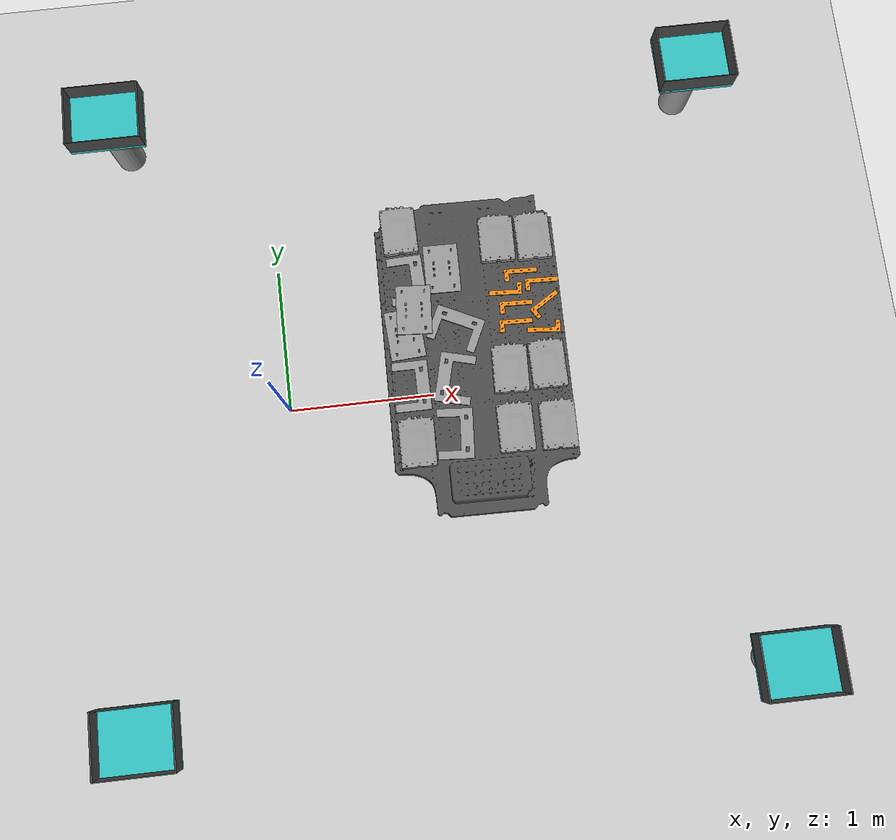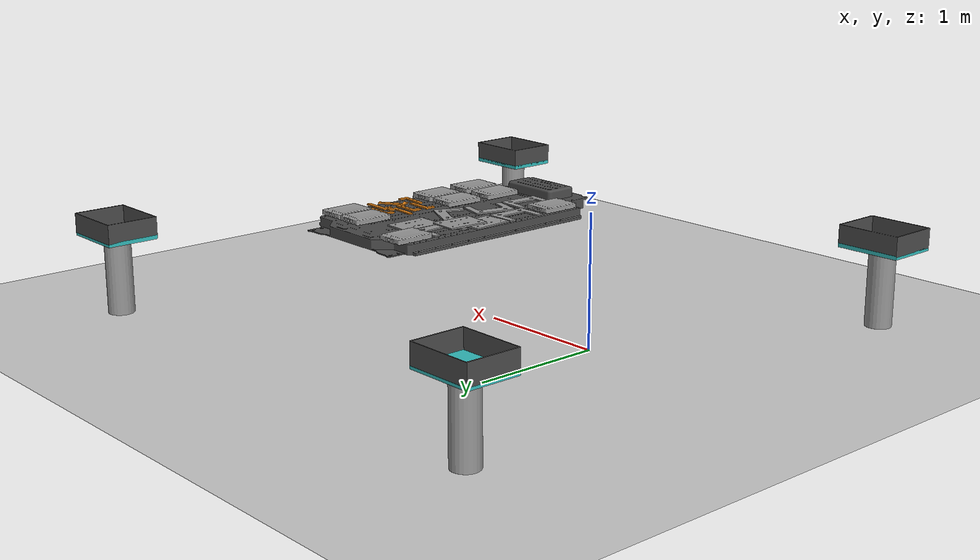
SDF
<sdf version="1.6">
 <world name="default">
  <scene><shadows>0</shadows><ambient>0.4 0.4 0.4 1</ambient><background>0.7 0.7 0.7 1</background></scene>
  <model name="ground_plane">
   <static>1</static>
   <link name="link">
    <collision name="collision">
     <geometry><plane><normal>0 0 1</normal><size>100 100</size></plane></geometry>
     <surface><friction><ode><mu>100</mu><mu2>50</mu2></ode></friction></surface>
    </collision>
    <visual name="visual">
     <cast_shadows>0</cast_shadows>
     <geometry><plane><normal>0 0 1</normal><size>100 100</size></plane></geometry>
     <material>
      <script><uri>file://media/materials/scripts/gazebo.material</uri><name>PR2/Grey3</name></script>
     </material>
    </visual>
   </link>
  </model>
  <light name="sun" type="directional">
   <pose>0 0 10 0 -0 0</pose>
   <diffuse>0.8 0.8 0.8 1</diffuse>
   <specular>0.2 0.2 0.2 1</specular>
   <attenuation>
    <range>1000</range>
    <constant>0.9</constant>
    <linear>0.01</linear>
    <quadratic>0.001</quadratic>
   </attenuation>
   <direction>-0.5 0.1 -0.9</direction>
  </light>
  <model name="tesla_battery">
   <static>1</static>
   <link name="link0">
    <collision name="collision">
     <pose>0 0.15 -0.05445 0 -0 0</pose>
     <geometry><box><size>1 1.9 0.12</size></box></geometry>
     <surface><friction><ode><mu>1</mu><mu2>1</mu2></ode></friction></surface>
    </collision>
    <visual name="visual">
     <geometry><mesh><uri>model://tesla_battery_v2/meshes/tesla_batteryv2.dae</uri></mesh></geometry>
     <material>
      <script><uri>file://media/materials/scripts/gazebo.material</uri><name>Gazebo/DarkGrey</name></script>
     </material>
    </visual>
   </link>
   <pose>1.28832 0.000278 0.8 0 -0 0</pose>
  </model>
  <model name="tesla_battery_support">
   <static>1</static>
   <link name="link0">
    <collision name="collision"><geometry><box><size>0.7 2.8 0.5</size></box></geometry></collision>
   </link>
   <pose>1.3 0 0.25 0 -0 0</pose>
  </model>
  <model name="bin_1">
   <static>1</static>
   <link name="column_link">
    <collision name="column">
     <pose>0 0 0.3 0 -0 0</pose>
     <geometry><box><size>0.4 0.5 0.6</size></box></geometry>
     <surface><friction><ode><mu>0.6</mu><mu2>0.6</mu2></ode></friction></surface>
    </collision>
    <visual name="column">
     <pose>0 0 0.3 0 -0 0</pose>
     <geometry><cylinder><radius>0.1</radius><length>0.6</length></cylinder></geometry>
     <material>
      <script><uri>file://media/materials/scripts/gazebo.material</uri><name>PR2/Grey4</name></script>
     </material>
    </visual>
   </link>
   <joint name="column2table" type="revolute">
    <parent>column_link</parent>
    <child>table_link</child>
    <pose>0 0 0.3 0 -0 0</pose>
   </joint>
   <link name="table_link">
    <collision name="surface">
     <pose>0 0 0.6 0 -0 0</pose>
     <geometry><box><size>0.5 0.4 0.03</size></box></geometry>
     <surface><friction><ode><mu>0.6</mu><mu2>0.6</mu2></ode></friction></surface>
    </collision>
    <visual name="surface">
     <pose>0 0 0.6 0 -0 0</pose>
     <geometry><box><size>0.5 0.4 0.03</size></box></geometry>
     <material>
      <script><uri>file://media/materials/scripts/gazebo.material</uri><name>Gazebo/Turquoise</name></script>
     </material>
    </visual>
   </link>
   <joint name="table2bin" type="prismatic">
    <parent>table_link</parent>
    <child>bin_link</child>
    <pose>0 0 1 0 -0 0</pose>
    <axis>
     <xyz>0 0 1</xyz>
     <use_parent_model_frame>0</use_parent_model_frame>
     <limit><lower>-1e+16</lower><upper>1e+16</upper></limit>
     <dynamics><spring_reference>0</spring_reference><spring_stiffness>0</spring_stiffness></dynamics>
    </axis>
   </joint>
   <link name="bin_link">
    <collision name="bin">
     <pose>0 0 0.68 0 -0 0</pose>
     <geometry><mesh><uri>model://table_bin/meshes/big_bin.stl</uri></mesh></geometry>
    </collision>
    <visual name="bin">
     <pose>0 0 0.68 0 -0 0</pose>
     <geometry><mesh><uri>model://table_bin/meshes/big_bin.dae</uri></mesh></geometry>
     <material>
      <script><uri>file://media/materials/scripts/gazebo.material</uri><name>Gazebo/DarkGrey</name></script>
     </material>
    </visual>
   </link>
   <pose>-1 2 0 0 -0 0</pose>
  </model>
  <model name="bin_2">
   <static>1</static>
   <link name="column_link">
    <collision name="column">
     <pose>0 0 0.3 0 -0 0</pose>
     <geometry><box><size>0.4 0.5 0.6</size></box></geometry>
     <surface><friction><ode><mu>0.6</mu><mu2>0.6</mu2></ode></friction></surface>
    </collision>
    <visual name="column">
     <pose>0 0 0.3 0 -0 0</pose>
     <geometry><cylinder><radius>0.1</radius><length>0.6</length></cylinder></geometry>
     <material>
      <script><uri>file://media/materials/scripts/gazebo.material</uri><name>PR2/Grey4</name></script>
     </material>
    </visual>
   </link>
   <joint name="column2table" type="revolute">
    <parent>column_link</parent>
    <child>table_link</child>
    <pose>0 0 0.3 0 -0 0</pose>
   </joint>
   <link name="table_link">
    <collision name="surface">
     <pose>0 0 0.6 0 -0 0</pose>
     <geometry><box><size>0.5 0.4 0.03</size></box></geometry>
     <surface><friction><ode><mu>0.6</mu><mu2>0.6</mu2></ode></friction></surface>
    </collision>
    <visual name="surface">
     <pose>0 0 0.6 0 -0 0</pose>
     <geometry><box><size>0.5 0.4 0.03</size></box></geometry>
     <material>
      <script><uri>file://media/materials/scripts/gazebo.material</uri><name>Gazebo/Turquoise</name></script>
     </material>
    </visual>
   </link>
   <joint name="table2bin" type="prismatic">
    <parent>table_link</parent>
    <child>bin_link</child>
    <pose>0 0 1 0 -0 0</pose>
    <axis>
     <xyz>0 0 1</xyz>
     <use_parent_model_frame>0</use_parent_model_frame>
     <limit><lower>-1e+16</lower><upper>1e+16</upper></limit>
     <dynamics><spring_reference>0</spring_reference><spring_stiffness>0</spring_stiffness></dynamics>
    </axis>
   </joint>
   <link name="bin_link">
    <collision name="bin">
     <pose>0 0 0.68 0 -0 0</pose>
     <geometry><mesh><uri>model://table_bin/meshes/big_bin.stl</uri></mesh></geometry>
    </collision>
    <visual name="bin">
     <pose>0 0 0.68 0 -0 0</pose>
     <geometry><mesh><uri>model://table_bin/meshes/big_bin.dae</uri></mesh></geometry>
     <material>
      <script><uri>file://media/materials/scripts/gazebo.material</uri><name>Gazebo/DarkGrey</name></script>
     </material>
    </visual>
   </link>
   <pose>-1 -2 0 0 -0 0</pose>
  </model>
  <model name="bin_3">
   <static>1</static>
   <link name="column_link">
    <collision name="column">
     <pose>0 0 0.3 0 -0 0</pose>
     <geometry><box><size>0.4 0.5 0.6</size></box></geometry>
     <surface><friction><ode><mu>0.6</mu><mu2>0.6</mu2></ode></friction></surface>
    </collision>
    <visual name="column">
     <pose>0 0 0.3 0 -0 0</pose>
     <geometry><cylinder><radius>0.1</radius><length>0.6</length></cylinder></geometry>
     <material>
      <script><uri>file://media/materials/scripts/gazebo.material</uri><name>PR2/Grey4</name></script>
     </material>
    </visual>
   </link>
   <joint name="column2table" type="revolute">
    <parent>column_link</parent>
    <child>table_link</child>
    <pose>0 0 0.3 0 -0 0</pose>
   </joint>
   <link name="table_link">
    <collision name="surface">
     <pose>0 0 0.6 0 -0 0</pose>
     <geometry><box><size>0.5 0.4 0.03</size></box></geometry>
     <surface><friction><ode><mu>0.6</mu><mu2>0.6</mu2></ode></friction></surface>
    </collision>
    <visual name="surface">
     <pose>0 0 0.6 0 -0 0</pose>
     <geometry><box><size>0.5 0.4 0.03</size></box></geometry>
     <material>
      <script><uri>file://media/materials/scripts/gazebo.material</uri><name>Gazebo/Turquoise</name></script>
     </material>
    </visual>
   </link>
   <joint name="table2bin" type="prismatic">
    <parent>table_link</parent>
    <child>bin_link</child>
    <pose>0 0 1 0 -0 0</pose>
    <axis>
     <xyz>0 0 1</xyz>
     <use_parent_model_frame>0</use_parent_model_frame>
     <limit><lower>-1e+16</lower><upper>1e+16</upper></limit>
     <dynamics><spring_reference>0</spring_reference><spring_stiffness>0</spring_stiffness></dynamics>
    </axis>
   </joint>
   <link name="bin_link">
    <collision name="bin">
     <pose>0 0 0.68 0 -0 0</pose>
     <geometry><mesh><uri>model://table_bin/meshes/big_bin.stl</uri></mesh></geometry>
    </collision>
    <visual name="bin">
     <pose>0 0 0.68 0 -0 0</pose>
     <geometry><mesh><uri>model://table_bin/meshes/big_bin.dae</uri></mesh></geometry>
     <material>
      <script><uri>file://media/materials/scripts/gazebo.material</uri><name>Gazebo/DarkGrey</name></script>
     </material>
    </visual>
   </link>
   <pose>3 -2 0 0 -0 0</pose>
  </model>
  <model name="bin_4">
   <static>1</static>
   <link name="column_link">
    <collision name="column">
     <pose>0 0 0.3 0 -0 0</pose>
     <geometry><box><size>0.4 0.5 0.6</size></box></geometry>
     <surface><friction><ode><mu>0.6</mu><mu2>0.6</mu2></ode></friction></surface>
    </collision>
    <visual name="column">
     <pose>0 0 0.3 0 -0 0</pose>
     <geometry><cylinder><radius>0.1</radius><length>0.6</length></cylinder></geometry>
     <material>
      <script><uri>file://media/materials/scripts/gazebo.material</uri><name>PR2/Grey4</name></script>
     </material>
    </visual>
   </link>
   <joint name="column2table" type="revolute">
    <parent>column_link</parent>
    <child>table_link</child>
    <pose>0 0 0.3 0 -0 0</pose>
   </joint>
   <link name="table_link">
    <collision name="surface">
     <pose>0 0 0.6 0 -0 0</pose>
     <geometry><box><size>0.5 0.4 0.03</size></box></geometry>
     <surface><friction><ode><mu>0.6</mu><mu2>0.6</mu2></ode></friction></surface>
    </collision>
    <visual name="surface">
     <pose>0 0 0.6 0 -0 0</pose>
     <geometry><box><size>0.5 0.4 0.03</size></box></geometry>
     <material>
      <script><uri>file://media/materials/scripts/gazebo.material</uri><name>Gazebo/Turquoise</name></script>
     </material>
    </visual>
   </link>
   <joint name="table2bin" type="prismatic">
    <parent>table_link</parent>
    <child>bin_link</child>
    <pose>0 0 1 0 -0 0</pose>
    <axis>
     <xyz>0 0 1</xyz>
     <use_parent_model_frame>0</use_parent_model_frame>
     <limit><lower>-1e+16</lower><upper>1e+16</upper></limit>
     <dynamics><spring_reference>0</spring_reference><spring_stiffness>0</spring_stiffness></dynamics>
    </axis>
   </joint>
   <link name="bin_link">
    <collision name="bin">
     <pose>0 0 0.68 0 -0 0</pose>
     <geometry><mesh><uri>model://table_bin/meshes/big_bin.stl</uri></mesh></geometry>
    </collision>
    <visual name="bin">
     <pose>0 0 0.68 0 -0 0</pose>
     <geometry><mesh><uri>model://table_bin/meshes/big_bin.dae</uri></mesh></geometry>
     <material>
      <script><uri>file://media/materials/scripts/gazebo.material</uri><name>Gazebo/DarkGrey</name></script>
     </material>
    </visual>
   </link>
   <pose>3 2 0 0 -0 0</pose>
  </model>
  <model name="leaf6">
   <static>0</static>
   <link name="leaf_cell_link">
    <collision name="collision">
     <geometry><box><size>0.2228 0.3149 0.035</size></box></geometry>
     <surface><friction><ode><mu>1</mu><mu2>1</mu2></ode></friction></surface>
    </collision>
    <visual name="visual">
     <geometry><mesh><uri>model://leaf_cell/meshes/leaf_cell.dae</uri></mesh></geometry>
     <material>
      <script><uri>file://media/materials/scripts/gazebo.material</uri><name>Gazebo/Grey</name></script>
     </material>
    </visual>
    <inertial>
     <pose>0 0 0 0 0 -1.5707</pose>
     <mass>0.1</mass>
     <inertia>
      <ixx>0.000539835</ixx>
      <iyy>0.00075853</iyy>
      <izz>0.0012813</izz>
      <ixy>0</ixy>
      <ixz>0</ixz>
      <iyz>0</iyz>
     </inertia>
    </inertial>
   </link>
   <pose>1.72511 0.80757 0.823045 3.2e-05 -0 -5.5e-05</pose>
  </model>
  <model name="leaf66">
   <static>0</static>
   <link name="leaf_cell_link">
    <collision name="collision">
     <geometry><box><size>0.2228 0.3149 0.035</size></box></geometry>
     <surface><friction><ode><mu>1</mu><mu2>1</mu2></ode></friction></surface>
    </collision>
    <visual name="visual">
     <geometry><mesh><uri>model://leaf_cell/meshes/leaf_cell.dae</uri></mesh></geometry>
     <material>
      <script><uri>file://media/materials/scripts/gazebo.material</uri><name>Gazebo/Grey</name></script>
     </material>
    </visual>
    <inertial>
     <pose>0 0 0 0 0 -1.5707</pose>
     <mass>0.1</mass>
     <inertia>
      <ixx>0.000539835</ixx>
      <iyy>0.00075853</iyy>
      <izz>0.0012813</izz>
      <ixy>0</ixy>
      <ixz>0</ixz>
      <iyz>0</iyz>
     </inertia>
    </inertial>
   </link>
   <pose>1.49222 0.816703 0.823044 0 5.4e-05 -0.028102</pose>
  </model>
  <model name="leaf5">
   <static>0</static>
   <link name="leaf_cell_link">
    <collision name="collision">
     <geometry><box><size>0.2228 0.3149 0.035</size></box></geometry>
     <surface><friction><ode><mu>1</mu><mu2>1</mu2></ode></friction></surface>
    </collision>
    <visual name="visual">
     <geometry><mesh><uri>model://leaf_cell/meshes/leaf_cell.dae</uri></mesh></geometry>
     <material>
      <script><uri>file://media/materials/scripts/gazebo.material</uri><name>Gazebo/Grey</name></script>
     </material>
    </visual>
    <inertial>
     <pose>0 0 0 0 0 -1.5707</pose>
     <mass>0.1</mass>
     <inertia>
      <ixx>0.000539835</ixx>
      <iyy>0.00075853</iyy>
      <izz>0.0012813</izz>
      <ixy>0</ixy>
      <ixz>0</ixz>
      <iyz>0</iyz>
     </inertia>
    </inertial>
   </link>
   <pose>1.71144 -0.029433 0.823034 0.000103 0 0.004322</pose>
  </model>
  <model name="leaf55">
   <static>0</static>
   <link name="leaf_cell_link">
    <collision name="collision">
     <geometry><box><size>0.2228 0.3149 0.035</size></box></geometry>
     <surface><friction><ode><mu>1</mu><mu2>1</mu2></ode></friction></surface>
    </collision>
    <visual name="visual">
     <geometry><mesh><uri>model://leaf_cell/meshes/leaf_cell.dae</uri></mesh></geometry>
     <material>
      <script><uri>file://media/materials/scripts/gazebo.material</uri><name>Gazebo/Grey</name></script>
     </material>
    </visual>
    <inertial>
     <pose>0 0 0 0 0 -1.5707</pose>
     <mass>0.1</mass>
     <inertia>
      <ixx>0.000539835</ixx>
      <iyy>0.00075853</iyy>
      <izz>0.0012813</izz>
      <ixy>0</ixy>
      <ixz>0</ixz>
      <iyz>0</iyz>
     </inertia>
    </inertial>
   </link>
   <pose>1.47668 -0.032976 0.823044 0 5.4e-05 -0.041658</pose>
  </model>
  <model name="leaf4">
   <static>0</static>
   <link name="leaf_cell_link">
    <collision name="collision">
     <geometry><box><size>0.2228 0.3149 0.035</size></box></geometry>
     <surface><friction><ode><mu>1</mu><mu2>1</mu2></ode></friction></surface>
    </collision>
    <visual name="visual">
     <geometry><mesh><uri>model://leaf_cell/meshes/leaf_cell.dae</uri></mesh></geometry>
     <material>
      <script><uri>file://media/materials/scripts/gazebo.material</uri><name>Gazebo/Grey</name></script>
     </material>
    </visual>
    <inertial>
     <pose>0 0 0 0 0 -1.5707</pose>
     <mass>0.1</mass>
     <inertia>
      <ixx>0.000539835</ixx>
      <iyy>0.00075853</iyy>
      <izz>0.0012813</izz>
      <ixy>0</ixy>
      <ixz>0</ixz>
      <iyz>0</iyz>
     </inertia>
    </inertial>
   </link>
   <pose>1.72599 -0.41415 0.82305 0 -0 -0.02291</pose>
  </model>
  <model name="leaf44">
   <static>0</static>
   <link name="leaf_cell_link">
    <collision name="collision">
     <geometry><box><size>0.2228 0.3149 0.035</size></box></geometry>
     <surface><friction><ode><mu>1</mu><mu2>1</mu2></ode></friction></surface>
    </collision>
    <visual name="visual">
     <geometry><mesh><uri>model://leaf_cell/meshes/leaf_cell.dae</uri></mesh></geometry>
     <material>
      <script><uri>file://media/materials/scripts/gazebo.material</uri><name>Gazebo/Grey</name></script>
     </material>
    </visual>
    <inertial>
     <pose>0 0 0 0 0 -1.5707</pose>
     <mass>0.1</mass>
     <inertia>
      <ixx>0.000539835</ixx>
      <iyy>0.00075853</iyy>
      <izz>0.0012813</izz>
      <ixy>0</ixy>
      <ixz>0</ixz>
      <iyz>0</iyz>
     </inertia>
    </inertial>
   </link>
   <pose>1.46423 -0.403984 0.82305 0 0 -0.014374</pose>
  </model>
  <model name="leaf1">
   <static>0</static>
   <link name="leaf_cell_link">
    <collision name="collision">
     <geometry><box><size>0.2228 0.3149 0.035</size></box></geometry>
     <surface><friction><ode><mu>1</mu><mu2>1</mu2></ode></friction></surface>
    </collision>
    <visual name="visual">
     <geometry><mesh><uri>model://leaf_cell/meshes/leaf_cell.dae</uri></mesh></geometry>
     <material>
      <script><uri>file://media/materials/scripts/gazebo.material</uri><name>Gazebo/Grey</name></script>
     </material>
    </visual>
    <inertial>
     <pose>0 0 0 0 0 -1.5707</pose>
     <mass>0.1</mass>
     <inertia>
      <ixx>0.000539835</ixx>
      <iyy>0.00075853</iyy>
      <izz>0.0012813</izz>
      <ixy>0</ixy>
      <ixz>0</ixz>
      <iyz>0</iyz>
     </inertia>
    </inertial>
   </link>
   <pose>0.878525 0.932489 0.823038 7.8e-05 -0 0.017266</pose>
  </model>
  <model name="plate_a_1">
   <static>0</static>
   <link name="link0">
    <collision name="collision">
     <geometry><mesh><uri>model://plate_a/meshes/plate_a_centroid.stl</uri></mesh></geometry>
     <surface><friction><ode><mu>0.99</mu><mu2>0.99</mu2></ode></friction></surface>
    </collision>
    <visual name="visual">
     <geometry><mesh><uri>model://plate_a/meshes/plate_a_centroid.dae</uri></mesh></geometry>
     <material>
      <script><uri>file://media/materials/scripts/gazebo.material</uri><name>PR2/Grey1</name></script>
     </material>
    </visual>
    <inertial>
     <mass>0.1</mass>
     <inertia>
      <ixx>0.00082718</ixx>
      <ixy>0</ixy>
      <ixz>0</ixz>
      <iyy>0.00043403</iyy>
      <iyz>0</iyz>
      <izz>0.00125955</izz>
     </inertia>
    </inertial>
   </link>
   <pose>0.948662 0.604681 0.81055 0 -0 0.041029</pose>
  </model>
  <model name="leaf2">
   <static>0</static>
   <link name="leaf_cell_link">
    <collision name="collision">
     <geometry><box><size>0.2228 0.3149 0.035</size></box></geometry>
     <surface><friction><ode><mu>1</mu><mu2>1</mu2></ode></friction></surface>
    </collision>
    <visual name="visual">
     <geometry><mesh><uri>model://leaf_cell/meshes/leaf_cell.dae</uri></mesh></geometry>
     <material>
      <script><uri>file://media/materials/scripts/gazebo.material</uri><name>Gazebo/Grey</name></script>
     </material>
    </visual>
    <inertial>
     <pose>0 0 0 0 0 -1.5707</pose>
     <mass>0.1</mass>
     <inertia>
      <ixx>0.000539835</ixx>
      <iyy>0.00075853</iyy>
      <izz>0.0012813</izz>
      <ixy>0</ixy>
      <ixz>0</ixz>
      <iyz>0</iyz>
     </inertia>
    </inertial>
   </link>
   <pose>0.853127 -0.431984 0.823038 -7.8e-05 0 -0.012862</pose>
  </model>
  <model name="plate_b_1">
   <static>0</static>
   <link name="link0">
    <collision name="collision">
     <geometry><box><size>0.2228 0.3149 0.01</size></box></geometry>
     <surface><friction><ode><mu>0.99</mu><mu2>0.99</mu2></ode></friction></surface>
    </collision>
    <visual name="visual">
     <geometry><mesh><uri>model://plate_b/meshes/plate_b.dae</uri></mesh></geometry>
     <material>
      <script><uri>file://media/materials/scripts/gazebo.material</uri><name>Gazebo/Grey</name></script>
     </material>
    </visual>
    <inertial>
     <mass>0.1</mass>
     <inertia>
      <ixx>0.00082718</ixx>
      <ixy>0</ixy>
      <ixz>0</ixz>
      <iyy>0.00043403</iyy>
      <iyz>0</iyz>
      <izz>0.00125955</izz>
     </inertia>
    </inertial>
   </link>
   <pose>0.847003 0.25291 0.81055 0 -0 0.066995</pose>
  </model>
  <model name="plate_a_2">
   <static>0</static>
   <link name="link0">
    <collision name="collision">
     <geometry><mesh><uri>model://plate_a/meshes/plate_a_centroid.stl</uri></mesh></geometry>
     <surface><friction><ode><mu>0.99</mu><mu2>0.99</mu2></ode></friction></surface>
    </collision>
    <visual name="visual">
     <geometry><mesh><uri>model://plate_a/meshes/plate_a_centroid.dae</uri></mesh></geometry>
     <material>
      <script><uri>file://media/materials/scripts/gazebo.material</uri><name>PR2/Grey1</name></script>
     </material>
    </visual>
    <inertial>
     <mass>0.1</mass>
     <inertia>
      <ixx>0.00082718</ixx>
      <ixy>0</ixy>
      <ixz>0</ixz>
      <iyy>0.00043403</iyy>
      <iyz>0</iyz>
      <izz>0.00125955</izz>
     </inertia>
    </inertial>
   </link>
   <pose>0.907387 -0.07956 0.810545 -5.2e-05 -2.6e-05 0.001875</pose>
  </model>
  <gravity>0 0 -9.8</gravity>
  <magnetic_field>6e-06 2.3e-05 -4.2e-05</magnetic_field>
  <atmosphere type="adiabatic"/>
  <physics name="default_physics" default="0" type="ode">
   <max_step_size>0.001</max_step_size>
   <real_time_factor>1</real_time_factor>
   <real_time_update_rate>1000</real_time_update_rate>
  </physics>
  <spherical_coordinates>
   <surface_model>EARTH_WGS84</surface_model>
   <latitude_deg>0</latitude_deg>
   <longitude_deg>0</longitude_deg>
   <elevation>0</elevation>
   <heading_deg>0</heading_deg>
  </spherical_coordinates>
  <model name="plate_a_1_clone">
   <static>0</static>
   <link name="link0">
    <collision name="collision">
     <geometry><mesh><uri>model://plate_a/meshes/plate_a_centroid.stl</uri></mesh></geometry>
     <surface><friction><ode><mu>0.99</mu><mu2>0.99</mu2></ode></friction></surface>
    </collision>
    <visual name="visual">
     <geometry><mesh><uri>model://plate_a/meshes/plate_a_centroid.dae</uri></mesh></geometry>
     <material>
      <script><uri>file://media/materials/scripts/gazebo.material</uri><name>PR2/Grey1</name></script>
     </material>
    </visual>
    <inertial>
     <mass>0.1</mass>
     <inertia>
      <ixx>0.00082718</ixx>
      <ixy>0</ixy>
      <ixz>0</ixz>
      <iyy>0.00043403</iyy>
      <iyz>0</iyz>
      <izz>0.00125955</izz>
     </inertia>
    </inertial>
   </link>
   <pose>1.07779 -0.047328 0.810545 6.2e-05 -6e-06 2.89458</pose>
  </model>
  <model name="plate_a_1_clone_clone">
   <static>0</static>
   <link name="link0">
    <collision name="collision">
     <geometry><mesh><uri>model://plate_a/meshes/plate_a_centroid.stl</uri></mesh></geometry>
     <surface><friction><ode><mu>0.99</mu><mu2>0.99</mu2></ode></friction></surface>
    </collision>
    <visual name="visual">
     <geometry><mesh><uri>model://plate_a/meshes/plate_a_centroid.dae</uri></mesh></geometry>
     <material>
      <script><uri>file://media/materials/scripts/gazebo.material</uri><name>PR2/Grey1</name></script>
     </material>
    </visual>
    <inertial>
     <mass>0.1</mass>
     <inertia>
      <ixx>0.00082718</ixx>
      <ixy>0</ixy>
      <ixz>0</ixz>
      <iyy>0.00043403</iyy>
      <iyz>0</iyz>
      <izz>0.00125955</izz>
     </inertia>
    </inertial>
   </link>
   <pose>1.14471 -0.408374 0.810545 -5e-05 -1.4e-05 -0.068802</pose>
  </model>
  <model name="plate_b_1_clone">
   <static>0</static>
   <link name="link0">
    <collision name="collision">
     <geometry><box><size>0.2228 0.3149 0.01</size></box></geometry>
     <surface><friction><ode><mu>0.99</mu><mu2>0.99</mu2></ode></friction></surface>
    </collision>
    <visual name="visual">
     <geometry><mesh><uri>model://plate_b/meshes/plate_b.dae</uri></mesh></geometry>
     <material>
      <script><uri>file://media/materials/scripts/gazebo.material</uri><name>Gazebo/Grey</name></script>
     </material>
    </visual>
    <inertial>
     <mass>0.1</mass>
     <inertia>
      <ixx>0.00082718</ixx>
      <ixy>0</ixy>
      <ixz>0</ixz>
      <iyy>0.00043403</iyy>
      <iyz>0</iyz>
      <izz>0.00125955</izz>
     </inertia>
    </inertial>
   </link>
   <pose>0.919591 0.403352 0.82055 -6e-06 5e-06 -0.060226</pose>
  </model>
  <model name="plate_b_1_clone_clone">
   <static>0</static>
   <link name="link0">
    <collision name="collision">
     <geometry><box><size>0.2228 0.3149 0.01</size></box></geometry>
     <surface><friction><ode><mu>0.99</mu><mu2>0.99</mu2></ode></friction></surface>
    </collision>
    <visual name="visual">
     <geometry><mesh><uri>model://plate_b/meshes/plate_b.dae</uri></mesh></geometry>
     <material>
      <script><uri>file://media/materials/scripts/gazebo.material</uri><name>Gazebo/Grey</name></script>
     </material>
    </visual>
    <inertial>
     <mass>0.1</mass>
     <inertia>
      <ixx>0.00082718</ixx>
      <ixy>0</ixy>
      <ixz>0</ixz>
      <iyy>0.00043403</iyy>
      <iyz>0</iyz>
      <izz>0.00125955</izz>
     </inertia>
    </inertial>
   </link>
   <pose>1.12469 0.655101 0.810537 -0 0.000113 -0.015666</pose>
  </model>
  <model name="plate_a_2_clone">
   <static>0</static>
   <link name="link0">
    <collision name="collision">
     <geometry><mesh><uri>model://plate_a/meshes/plate_a_centroid.stl</uri></mesh></geometry>
     <surface><friction><ode><mu>0.99</mu><mu2>0.99</mu2></ode></friction></surface>
    </collision>
    <visual name="visual">
     <geometry><mesh><uri>model://plate_a/meshes/plate_a_centroid.dae</uri></mesh></geometry>
     <material>
      <script><uri>file://media/materials/scripts/gazebo.material</uri><name>PR2/Grey1</name></script>
     </material>
    </visual>
    <inertial>
     <mass>0.1</mass>
     <inertia>
      <ixx>0.00082718</ixx>
      <ixy>0</ixy>
      <ixz>0</ixz>
      <iyy>0.00043403</iyy>
      <iyz>0</iyz>
      <izz>0.00125955</izz>
     </inertia>
    </inertial>
   </link>
   <pose>1.19258 0.303807 0.81055 0 -1e-06 1.12515</pose>
  </model>
  <audio><device>default</device></audio>
  <model name="bracket">
   <static>0</static>
   <link name="link0">
    <collision name="collision">
     <pose>-0.005 0 0.005 0 -0 0</pose>
     <geometry><box><size>0.21 0.03 0.01</size></box></geometry>
     <surface><friction><ode><mu>0.99</mu><mu2>0.99</mu2></ode></friction></surface>
    </collision>
    <visual name="visual">
     <geometry><mesh><uri>model://bracket/meshes/bracket_modified.dae</uri></mesh></geometry>
     <material>
      <script><uri>file://media/materials/scripts/gazebo.material</uri><name>Gazebo/Orange</name></script>
     </material>
    </visual>
    <inertial>
     <mass>0.1</mass>
     <inertia><ixx>8e-06</ixx><ixy>0</ixy><ixz>0</ixz><iyy>0.000368</iyy><iyz>0</iyz><izz>0.000375</izz></inertia>
    </inertial>
   </link>
   <pose>1.55621 0.260902 0.80555 0 0 -0.034087</pose>
  </model>
  <model name="bracket_clone">
   <static>0</static>
   <link name="link0">
    <collision name="collision">
     <pose>-0.005 0 0.005 0 -0 0</pose>
     <geometry><box><size>0.21 0.03 0.01</size></box></geometry>
     <surface><friction><ode><mu>0.99</mu><mu2>0.99</mu2></ode></friction></surface>
    </collision>
    <visual name="visual">
     <geometry><mesh><uri>model://bracket/meshes/bracket_modified.dae</uri></mesh></geometry>
     <material>
      <script><uri>file://media/materials/scripts/gazebo.material</uri><name>Gazebo/Orange</name></script>
     </material>
    </visual>
    <inertial>
     <mass>0.1</mass>
     <inertia><ixx>8e-06</ixx><ixy>0</ixy><ixz>0</ixz><iyy>0.000368</iyy><iyz>0</iyz><izz>0.000375</izz></inertia>
    </inertial>
   </link>
   <pose>1.50339 0.457605 0.80555 0 -0 3.08534</pose>
  </model>
  <model name="bracket_clone_clone">
   <static>0</static>
   <link name="link0">
    <collision name="collision">
     <pose>-0.005 0 0.005 0 -0 0</pose>
     <geometry><box><size>0.21 0.03 0.01</size></box></geometry>
     <surface><friction><ode><mu>0.99</mu><mu2>0.99</mu2></ode></friction></surface>
    </collision>
    <visual name="visual">
     <geometry><mesh><uri>model://bracket/meshes/bracket_modified.dae</uri></mesh></geometry>
     <material>
      <script><uri>file://media/materials/scripts/gazebo.material</uri><name>Gazebo/Orange</name></script>
     </material>
    </visual>
    <inertial>
     <mass>0.1</mass>
     <inertia><ixx>8e-06</ixx><ixy>0</ixy><ixz>0</ixz><iyy>0.000368</iyy><iyz>0</iyz><izz>0.000375</izz></inertia>
    </inertial>
   </link>
   <pose>1.62534 0.587739 0.80555 0 0 -0.034087</pose>
  </model>
  <model name="bracket_clone_clone_clone">
   <static>0</static>
   <link name="link0">
    <collision name="collision">
     <pose>-0.005 0 0.005 0 -0 0</pose>
     <geometry><box><size>0.21 0.03 0.01</size></box></geometry>
     <surface><friction><ode><mu>0.99</mu><mu2>0.99</mu2></ode></friction></surface>
    </collision>
    <visual name="visual">
     <geometry><mesh><uri>model://bracket/meshes/bracket_modified.dae</uri></mesh></geometry>
     <material>
      <script><uri>file://media/materials/scripts/gazebo.material</uri><name>Gazebo/Orange</name></script>
     </material>
    </visual>
    <inertial>
     <mass>0.1</mass>
     <inertia><ixx>8e-06</ixx><ixy>0</ixy><ixz>0</ixz><iyy>0.000368</iyy><iyz>0</iyz><izz>0.000375</izz></inertia>
    </inertial>
   </link>
   <pose>1.75017 0.513227 0.805538 -0.000779 -0 -0.034354</pose>
  </model>
  <model name="bracket_clone_clone_0">
   <static>0</static>
   <link name="link0">
    <collision name="collision">
     <pose>-0.005 0 0.005 0 -0 0</pose>
     <geometry><box><size>0.21 0.03 0.01</size></box></geometry>
     <surface><friction><ode><mu>0.99</mu><mu2>0.99</mu2></ode></friction></surface>
    </collision>
    <visual name="visual">
     <geometry><mesh><uri>model://bracket/meshes/bracket_modified.dae</uri></mesh></geometry>
     <material>
      <script><uri>file://media/materials/scripts/gazebo.material</uri><name>Gazebo/Orange</name></script>
     </material>
    </visual>
    <inertial>
     <mass>0.1</mass>
     <inertia><ixx>8e-06</ixx><ixy>0</ixy><ixz>0</ixz><iyy>0.000368</iyy><iyz>0</iyz><izz>0.000375</izz></inertia>
    </inertial>
   </link>
   <pose>1.71355 0.190596 0.80555 0 -0 3.05632</pose>
  </model>
  <model name="bracket_clone_clone_clone_0">
   <static>0</static>
   <link name="link0">
    <collision name="collision">
     <pose>-0.005 0 0.005 0 -0 0</pose>
     <geometry><box><size>0.21 0.03 0.01</size></box></geometry>
     <surface><friction><ode><mu>0.99</mu><mu2>0.99</mu2></ode></friction></surface>
    </collision>
    <visual name="visual">
     <geometry><mesh><uri>model://bracket/meshes/bracket_modified.dae</uri></mesh></geometry>
     <material>
      <script><uri>file://media/materials/scripts/gazebo.material</uri><name>Gazebo/Orange</name></script>
     </material>
    </visual>
    <inertial>
     <mass>0.1</mass>
     <inertia><ixx>8e-06</ixx><ixy>0</ixy><ixz>0</ixz><iyy>0.000368</iyy><iyz>0</iyz><izz>0.000375</izz></inertia>
    </inertial>
   </link>
   <pose>1.74927 0.372821 0.805538 -0.000779 -0 0.563022</pose>
  </model>
  <model name="bracket_clone_clone_1">
   <static>0</static>
   <link name="link0">
    <collision name="collision">
     <pose>-0.005 0 0.005 0 -0 0</pose>
     <geometry><box><size>0.21 0.03 0.01</size></box></geometry>
     <surface><friction><ode><mu>0.99</mu><mu2>0.99</mu2></ode></friction></surface>
    </collision>
    <visual name="visual">
     <geometry><mesh><uri>model://bracket/meshes/bracket_modified.dae</uri></mesh></geometry>
     <material>
      <script><uri>file://media/materials/scripts/gazebo.material</uri><name>Gazebo/Orange</name></script>
     </material>
    </visual>
    <inertial>
     <mass>0.1</mass>
     <inertia><ixx>8e-06</ixx><ixy>0</ixy><ixz>0</ixz><iyy>0.000368</iyy><iyz>0</iyz><izz>0.000375</izz></inertia>
    </inertial>
   </link>
   <pose>1.5713 0.379807 0.80555 0 0 -0.034087</pose>
  </model>
 </world>
</sdf>
